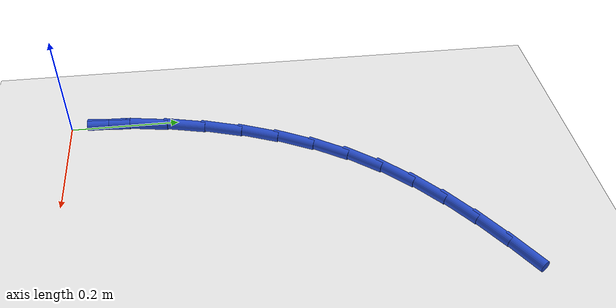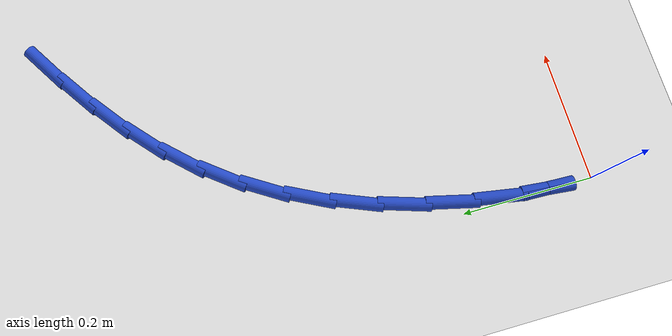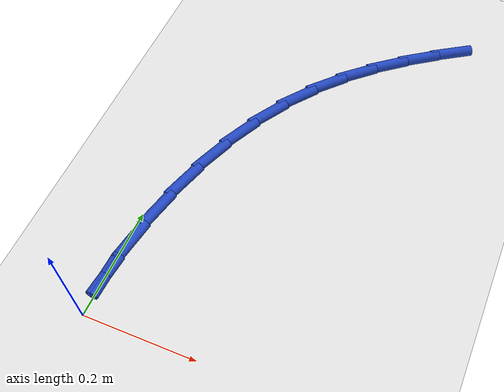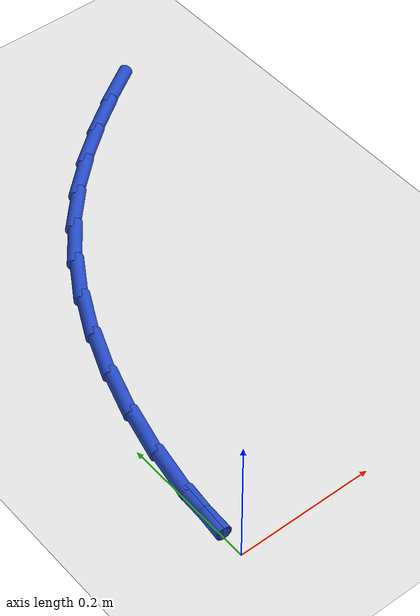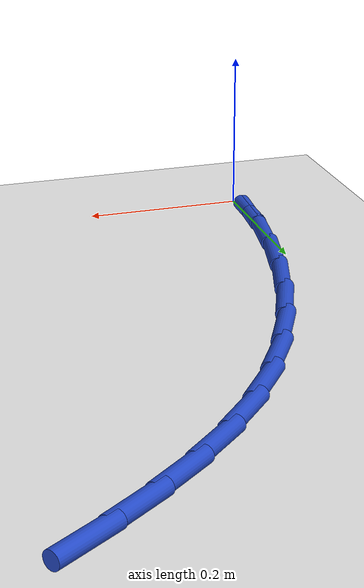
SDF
<sdf version="1.6">
 <world name="default">
  <model name="ground_plane">
   <static>1</static>
   <link name="link">
    <collision name="collision">
     <geometry><plane><normal>0 0 1</normal><size>100 100</size></plane></geometry>
     <surface><friction><ode><mu>100</mu><mu2>50</mu2></ode></friction></surface>
    </collision>
    <visual name="visual">
     <cast_shadows>0</cast_shadows>
     <geometry><plane><normal>0 0 1</normal><size>100 100</size></plane></geometry>
     <material>
      <script><uri>file://media/materials/scripts/gazebo.material</uri><name>Gazebo/WhiteGlow</name></script>
     </material>
    </visual>
   </link>
  </model>
  <model name="line">
   <link name="link_1">
    <pose>0.0023204260006453687 0.071196060263568 0.01 0 1.57 1.4717587684353366</pose>
    <collision name="collision">
     <geometry><cylinder><radius>0.01</radius><length>0.08</length></cylinder></geometry>
    </collision>
    <visual name="visual">
     <material>
      <script><name>Gazebo/Blue</name><uri>file://media/materials/scripts/gazebo.material</uri></script>
     </material>
     <geometry><cylinder><radius>0.01</radius><length>0.08</length></cylinder></geometry>
    </visual>
   </link>
   <link name="link_2">
    <pose>0.009394525976747068 0.14239083052493579 0.01 0 1.57 1.4048252601742408</pose>
    <collision name="collision">
     <geometry><cylinder><radius>0.01</radius><length>0.08</length></cylinder></geometry>
    </collision>
    <visual name="visual">
     <material>
      <script><name>Gazebo/Blue</name><uri>file://media/materials/scripts/gazebo.material</uri></script>
     </material>
     <geometry><cylinder><radius>0.01</radius><length>0.08</length></cylinder></geometry>
    </visual>
   </link>
   <link name="link_3">
    <pose>0.021198768156061122 0.2128588629435023 0.01 0 1.57 1.3359769108931987</pose>
    <collision name="collision">
     <geometry><cylinder><radius>0.01</radius><length>0.08</length></cylinder></geometry>
    </collision>
    <visual name="visual">
     <material>
      <script><name>Gazebo/Blue</name><uri>file://media/materials/scripts/gazebo.material</uri></script>
     </material>
     <geometry><cylinder><radius>0.01</radius><length>0.08</length></cylinder></geometry>
    </visual>
   </link>
   <link name="link_4">
    <pose>0.03770962076634356 0.28187470967866673 0.01 0 1.57 1.2637325535600794</pose>
    <collision name="collision">
     <geometry><cylinder><radius>0.01</radius><length>0.08</length></cylinder></geometry>
    </collision>
    <visual name="visual">
     <material>
      <script><name>Gazebo/Blue</name><uri>file://media/materials/scripts/gazebo.material</uri></script>
     </material>
     <geometry><cylinder><radius>0.01</radius><length>0.08</length></cylinder></geometry>
    </visual>
   </link>
   <link name="link_5">
    <pose>0.058903552035350436 0.34871292288982797 0.01 0 1.57 1.1865280059753558</pose>
    <collision name="collision">
     <geometry><cylinder><radius>0.01</radius><length>0.08</length></cylinder></geometry>
    </collision>
    <visual name="visual">
     <material>
      <script><name>Gazebo/Blue</name><uri>file://media/materials/scripts/gazebo.material</uri></script>
     </material>
     <geometry><cylinder><radius>0.01</radius><length>0.08</length></cylinder></geometry>
    </visual>
   </link>
   <link name="link_6">
    <pose>0.08475703019083777 0.4126480547363851 0.01 0 1.57 1.102698900109821</pose>
    <collision name="collision">
     <geometry><cylinder><radius>0.01</radius><length>0.08</length></cylinder></geometry>
    </collision>
    <visual name="visual">
     <material>
      <script><name>Gazebo/Blue</name><uri>file://media/materials/scripts/gazebo.material</uri></script>
     </material>
     <geometry><cylinder><radius>0.01</radius><length>0.08</length></cylinder></geometry>
    </visual>
   </link>
   <link name="link_7">
    <pose>0.11524652346056163 0.4729546573777372 0.01 0 1.57 1.01050766506335</pose>
    <collision name="collision">
     <geometry><cylinder><radius>0.01</radius><length>0.08</length></cylinder></geometry>
    </collision>
    <visual name="visual">
     <material>
      <script><name>Gazebo/Blue</name><uri>file://media/materials/scripts/gazebo.material</uri></script>
     </material>
     <geometry><cylinder><radius>0.01</radius><length>0.08</length></cylinder></geometry>
    </visual>
   </link>
   <link name="link_8">
    <pose>0.15034850007227804 0.5289072829732832 0.01 0 1.57 0.9097745020727888</pose>
    <collision name="collision">
     <geometry><cylinder><radius>0.01</radius><length>0.08</length></cylinder></geometry>
    </collision>
    <visual name="visual">
     <material>
      <script><name>Gazebo/Blue</name><uri>file://media/materials/scripts/gazebo.material</uri></script>
     </material>
     <geometry><cylinder><radius>0.01</radius><length>0.08</length></cylinder></geometry>
    </visual>
   </link>
   <link name="link_9">
    <pose>0.19000751638638133 0.579899692649551 0.01 0 1.57 0.8126715027131681</pose>
    <collision name="collision">
     <geometry><cylinder><radius>0.01</radius><length>0.08</length></cylinder></geometry>
    </collision>
    <visual name="visual">
     <material>
      <script><name>Gazebo/Blue</name><uri>file://media/materials/scripts/gazebo.material</uri></script>
     </material>
     <geometry><cylinder><radius>0.01</radius><length>0.08</length></cylinder></geometry>
    </visual>
   </link>
   <link name="link_10">
    <pose>0.2339152639240775 0.6262702414661396 0.01 0 1.57 0.727950594548731</pose>
    <collision name="collision">
     <geometry><cylinder><radius>0.01</radius><length>0.08</length></cylinder></geometry>
    </collision>
    <visual name="visual">
     <material>
      <script><name>Gazebo/Blue</name><uri>file://media/materials/scripts/gazebo.material</uri></script>
     </material>
     <geometry><cylinder><radius>0.01</radius><length>0.08</length></cylinder></geometry>
    </visual>
   </link>
   <link name="link_11">
    <pose>0.2816430807165511 0.6688068731912363 0.01 0 1.57 0.6577998620425936</pose>
    <collision name="collision">
     <geometry><cylinder><radius>0.01</radius><length>0.08</length></cylinder></geometry>
    </collision>
    <visual name="visual">
     <material>
      <script><name>Gazebo/Blue</name><uri>file://media/materials/scripts/gazebo.material</uri></script>
     </material>
     <geometry><cylinder><radius>0.01</radius><length>0.08</length></cylinder></geometry>
    </visual>
   </link>
   <link name="link_12">
    <pose>0.3327615693599613 0.7083002788609585 0.01 0 1.57 0.6030533014801097</pose>
    <collision name="collision">
     <geometry><cylinder><radius>0.01</radius><length>0.08</length></cylinder></geometry>
    </collision>
    <visual name="visual">
     <material>
      <script><name>Gazebo/Blue</name><uri>file://media/materials/scripts/gazebo.material</uri></script>
     </material>
     <geometry><cylinder><radius>0.01</radius><length>0.08</length></cylinder></geometry>
    </visual>
   </link>
   <link name="link_13">
    <pose>0.386841332450467 0.745541149511424 0.01 0 1.57 0.5636231282191243</pose>
    <collision name="collision">
     <geometry><cylinder><radius>0.01</radius><length>0.08</length></cylinder></geometry>
    </collision>
    <visual name="visual">
     <material>
      <script><name>Gazebo/Blue</name><uri>file://media/materials/scripts/gazebo.material</uri></script>
     </material>
     <geometry><cylinder><radius>0.01</radius><length>0.08</length></cylinder></geometry>
    </visual>
   </link>
   <link name="link_111">
    <pose>0.0023301711376183844 0.0712841409011332 0.01 0 1.57 1.5381194693424274</pose>
    <collision name="collision">
     <geometry><cylinder><radius>0.01</radius><length>0.08</length></cylinder></geometry>
    </collision>
    <visual name="visual">
     <material>
      <script><name>Gazebo/Blue</name><uri>file://media/materials/scripts/gazebo.material</uri></script>
     </material>
     <geometry><cylinder><radius>0.01</radius><length>0.08</length></cylinder></geometry>
    </visual>
   </link>
  </model>
 </world>
</sdf>
